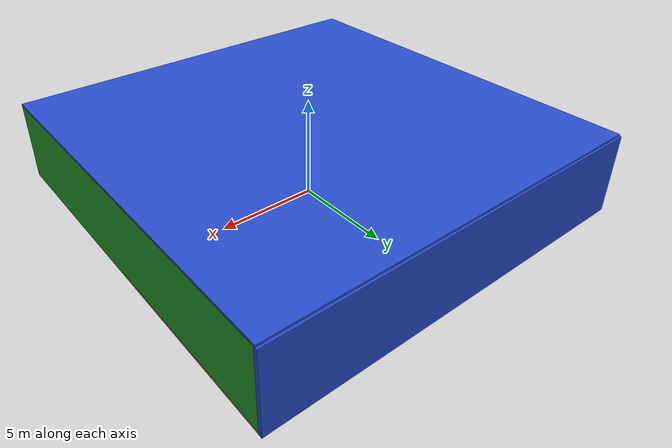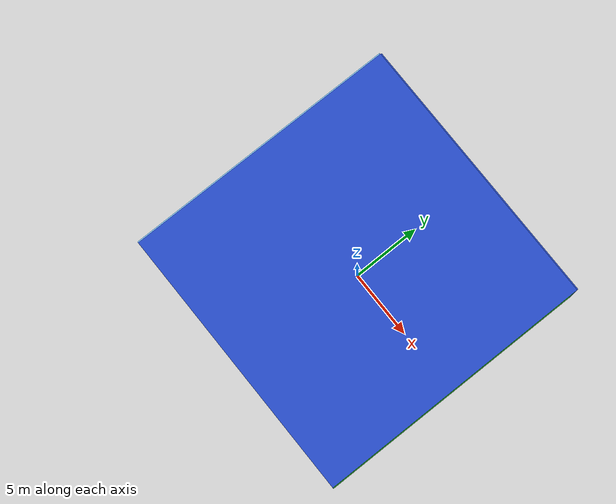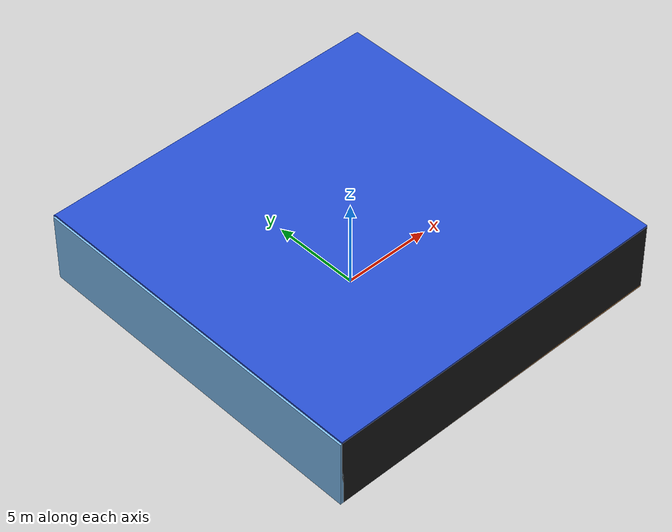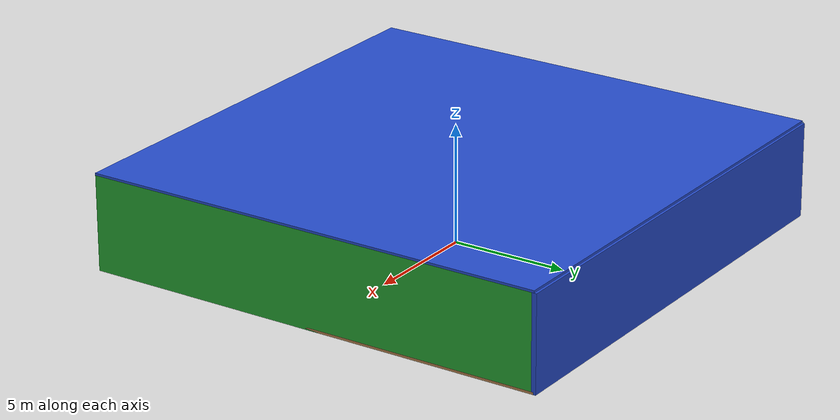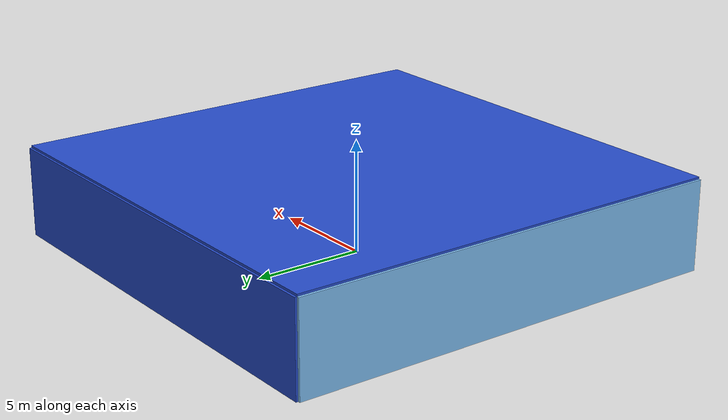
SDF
<sdf version="1.4">
 <world name="default">
  <physics type="ode">
   <max_step_size>0.001</max_step_size>
   <real_time_factor>1</real_time_factor>
   <real_time_update_rate>1000</real_time_update_rate>
   <gravity>0 0 -9.8</gravity>
  </physics>
  <scene><ambient>0.4 0.4 0.4 1</ambient><background>0.7 0.7 0.7 1</background><shadows>1</shadows></scene>
  <model name="Surrounding">
   <static>1</static>
   <link name="Ceiling">
    <collision name="Ceiling_Collision"><geometry><box><size>20 20 0.1</size></box></geometry></collision>
    <visual name="Ceiling_Visual">
     <geometry><box><size>20 20 0.1</size></box></geometry>
     <material>
      <script><uri>file://media/materials/scripts/gazebo.material</uri><name>Gazebo/BlueLaser</name></script>
     </material>
    </visual>
    <pose>0 0 4.05 0 0 0</pose>
   </link>
   <link name="Wall_South">
    <collision name="Wall_South_Collision">
     <geometry><box><size>20 0 4</size></box></geometry>
     <pose>0 0 2 0 -0 0</pose>
    </collision>
    <visual name="Wall_South_Visual">
     <pose>0 0 2 0 -0 0</pose>
     <geometry><box><size>20 0 4</size></box></geometry>
     <material>
      <script><uri>file://media/materials/scripts/gazebo.material</uri><name>Gazebo/Black</name></script>
     </material>
    </visual>
    <velocity_decay><linear>0</linear><angular>0</angular></velocity_decay>
    <pose>0 -10 0 0 -0 0</pose>
   </link>
   <link name="Wall_East">
    <collision name="Wall_21_Collision">
     <geometry><box><size>20 0 4</size></box></geometry>
     <pose>0 0 2 0 -0 0</pose>
    </collision>
    <visual name="Wall_21_Visual">
     <pose>0 0 2 0 -0 0</pose>
     <geometry><box><size>20 0 4</size></box></geometry>
     <material>
      <script><uri>file://media/materials/scripts/gazebo.material</uri><name>Gazebo/GreenGlow</name></script>
     </material>
    </visual>
    <velocity_decay><linear>0</linear><angular>0</angular></velocity_decay>
    <pose>10 0 0 0 -0 1.5708</pose>
   </link>
   <link name="Wall_North">
    <collision name="Wall_22_Collision">
     <geometry><box><size>20 0.2 4</size></box></geometry>
     <pose>0 0 2 0 -0 0</pose>
    </collision>
    <visual name="Wall_22_Visual">
     <pose>0 0 2 0 -0 0</pose>
     <geometry><box><size>20 0.2 4</size></box></geometry>
     <material>
      <script><uri>file://media/materials/scripts/gazebo.material</uri><name>Gazebo/BlueGlow</name></script>
     </material>
    </visual>
    <velocity_decay><linear>0</linear><angular>0</angular></velocity_decay>
    <pose>0 10 0 0 -0 0</pose>
   </link>
   <link name="Wall_West">
    <collision name="Wall_23_Collision">
     <geometry><box><size>20 0.2 4</size></box></geometry>
     <pose>0 0 2 0 -0 0</pose>
    </collision>
    <visual name="Wall_23_Visual">
     <pose>0 0 2 0 -0 0</pose>
     <geometry><box><size>20 0.2 4</size></box></geometry>
     <material>
      <script><uri>file://media/materials/scripts/gazebo.material</uri><name>Gazebo/SkyBlue</name></script>
     </material>
    </visual>
    <velocity_decay><linear>0</linear><angular>0</angular></velocity_decay>
    <pose>-10 0 0 0 0 -1.5708</pose>
   </link>
   <link name="Ground_link">
    <collision name="collision">
     <pose>0 0 .05 0 -0 0</pose>
     <geometry><box><size>20 20 0.1</size></box></geometry>
    </collision>
    <visual name="visual">
     <pose>0 0 .05 0 -0 0</pose>
     <geometry><box><size>20 20 0.1</size></box></geometry>
     <material>
      <script><uri>file://media/materials/scripts/gazebo.material</uri><name>Gazebo/WoodPallet</name></script>
     </material>
    </visual>
   </link>
   <static>1</static>
  </model>
  <spherical_coordinates>
   <surface_model>EARTH_WGS84</surface_model>
   <latitude_deg>0</latitude_deg>
   <longitude_deg>0</longitude_deg>
   <elevation>0</elevation>
   <heading_deg>0</heading_deg>
  </spherical_coordinates>
  <light name="lightball_0" type="diffuse">
   <diffuse>0.8 0.8 0.8 1</diffuse>
   <specular>0.2 0.2 0.2 1</specular>
   <attenuation>
    <range>100</range>
    <constant>0.7</constant>
    <linear>0.01</linear>
    <quadratic>0.001</quadratic>
   </attenuation>
   <direction>-0.5 0.1 -0.9</direction>
   <pose>-7.53371896028 -0.825714855166 2.63722616662 0 0 0</pose>
  </light>
  <light name="lightball_1" type="diffuse">
   <diffuse>0.8 0.8 0.8 1</diffuse>
   <specular>0.2 0.2 0.2 1</specular>
   <attenuation>
    <range>100</range>
    <constant>0.7</constant>
    <linear>0.01</linear>
    <quadratic>0.001</quadratic>
   </attenuation>
   <direction>-0.5 0.1 -0.9</direction>
   <pose>-9.72539164253 -2.41153872855 0.517479451611 0 0 0</pose>
  </light>
  <light name="lightball_2" type="diffuse">
   <diffuse>0.8 0.8 0.8 1</diffuse>
   <specular>0.2 0.2 0.2 1</specular>
   <attenuation>
    <range>100</range>
    <constant>0.7</constant>
    <linear>0.01</linear>
    <quadratic>0.001</quadratic>
   </attenuation>
   <direction>-0.5 0.1 -0.9</direction>
   <pose>8.84947414838 6.05937618588 2.79434761735 0 0 0</pose>
  </light>
  <light name="lightball_3" type="diffuse">
   <diffuse>0.8 0.8 0.8 1</diffuse>
   <specular>0.2 0.2 0.2 1</specular>
   <attenuation>
    <range>100</range>
    <constant>0.7</constant>
    <linear>0.01</linear>
    <quadratic>0.001</quadratic>
   </attenuation>
   <direction>-0.5 0.1 -0.9</direction>
   <pose>-2.23864931881 1.97973812114 0.704012273503 0 0 0</pose>
  </light>
  <light name="lightball_4" type="diffuse">
   <diffuse>0.8 0.8 0.8 1</diffuse>
   <specular>0.2 0.2 0.2 1</specular>
   <attenuation>
    <range>100</range>
    <constant>0.7</constant>
    <linear>0.01</linear>
    <quadratic>0.001</quadratic>
   </attenuation>
   <direction>-0.5 0.1 -0.9</direction>
   <pose>6.22449773671 8.53588601025 3.88088036145 0 0 0</pose>
  </light>
  <include>
   <uri>model://textured_shapes</uri>
   <pose>-7.29314497688 -4.48027901602 0 0 0 1.20698459709</pose>
  </include>
  <include>
   <uri>model://robocup_3Dsim_goal</uri>
   <pose>-5.19431055434 0.753531270936 0 0 0 0.147238713079</pose>
  </include>
  <include>
   <uri>model://construction_cone</uri>
   <pose>-4.20336304363 8.04596328002 0 0 0 0.828033028002</pose>
  </include>
  <include>
   <uri>model://robocup_3Dsim_goal</uri>
   <pose>7.91412923031 4.30904286903 0 0 0 2.71968869684</pose>
  </include>
 </world>
</sdf>

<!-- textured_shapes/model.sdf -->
<sdf version="1.6">
  <model name="textured_shapes">
    <pose>0 0 0.5 0 0 0</pose>
    <link name="box">
      <pose>0 -1.5 0 0 0 0</pose>
      <collision name="collision">
        <geometry>
          <box>
            <size>1 1 1</size>
          </box>
        </geometry>
      </collision>
      <visual name="visual">
        <geometry>
          <box>
            <size>1 1 1</size>
          </box>
        </geometry>
        <material>
          <script>
            <uri>model://../model_source/models/textured_shapes/materials/scripts</uri>
            <uri>model://../model_source/models/textured_shapes/materials/textures</uri>
            <name>TexturedShape/Squares</name>
          </script>
        </material>
      </visual>
    </link>
    <link name="sphere">
      <collision name="collision">
        <geometry>
          <sphere>
            <radius>0.5</radius>
          </sphere>
        </geometry>
      </collision>
      <visual name="visual">
        <geometry>
          <sphere>
            <radius>0.5</radius>
          </sphere>
        </geometry>
        <material>
          <script>
            <uri>model://../model_source/models/textured_shapes/materials/scripts</uri>
            <uri>model://../model_source/models/textured_shapes/materials/textures</uri>
            <name>TexturedShape/Squares</name>
          </script>
        </material>
      </visual>
    </link>
    <link name="cylinder">
      <pose>0 1.5 0 0 0 0</pose>
      <collision name="collision">
        <geometry>
          <cylinder>
            <radius>0.5</radius>
            <length>1</length>
          </cylinder>
        </geometry>
      </collision>
      <visual name="visual">
        <geometry>
          <cylinder>
            <radius>0.5</radius>
            <length>1</length>
          </cylinder>
        </geometry>
        <material>
          <script>
            <uri>model://../model_source/models/textured_shapes/materials/scripts</uri>
            <uri>model://../model_source/models/textured_shapes/materials/textures</uri>
            <name>TexturedShape/Squares</name>
          </script>
        </material>
      </visual>
    </link>
  </model>
</sdf>

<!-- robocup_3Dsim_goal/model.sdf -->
<sdf version="1.5">
  <model name="robocup_3d_goal">
    <static>true</static>
    <link name="left_post">
      <pose>0 1.05 0.45 0 0 0</pose>
      <collision name="collision">
        <geometry>
          <cylinder>
            <radius>0.05</radius>
            <length>0.9</length>
          </cylinder>
        </geometry>
      </collision>
      <visual name="visual">
        <geometry>
          <cylinder>
            <radius>0.05</radius>
            <length>0.9</length>
          </cylinder>
        </geometry>
        <material>
          <script>
            <uri>file://media/materials/scripts/gazebo.material</uri>
            <name>Gazebo/ZincYellow</name>
          </script>
        </material>
      </visual>
    </link>
    <link name="left_support_horiz_lower">
      <pose>0.30 1.05 0.01 0 0 0</pose>
      <collision name="collision">
        <geometry>
          <box>
            <size>0.50 0.02 0.02</size>
          </box>
        </geometry>
      </collision>
      <visual name="visual">
        <geometry>
          <box>
            <size>0.50 0.02 0.02</size>
          </box>
        </geometry>
        <material>
          <script>
            <uri>file://media/materials/scripts/gazebo.material</uri>
            <name>Gazebo/White</name>
          </script>
        </material>
      </visual>
    </link>
    <link name="left_support_horiz_upper">
      <pose>0.30 1.05 0.79 0 0 0</pose>
      <collision name="collision">
        <geometry>
          <box>
            <size>0.50 0.02 0.02</size>
          </box>
        </geometry>
      </collision>
      <visual name="visual">
        <geometry>
          <box>
            <size>0.50 0.02 0.02</size>
          </box>
        </geometry>
        <material>
          <script>
            <uri>file://media/materials/scripts/gazebo.material</uri>
            <name>Gazebo/White</name>
          </script>
        </material>
      </visual>
    </link>
    <link name="left_support_vertical">
      <pose>0.56 1.05 0.4 0 1.5708 0</pose>
      <collision name="collision">
        <geometry>
          <box>
            <size>0.80 0.02 0.02</size>
          </box>
        </geometry>
      </collision>
      <visual name="visual">
        <geometry>
          <box>
            <size>0.80 0.02 0.02</size>
          </box>
        </geometry>
        <material>
          <script>
            <uri>file://media/materials/scripts/gazebo.material</uri>
            <name>Gazebo/White</name>
          </script>
        </material>
      </visual>
    </link>
    <link name="right_support_horiz_lower">
      <pose>0.30 -1.05 0.01 0 0 0</pose>
      <collision name="collision">
        <geometry>
          <box>
            <size>0.50 0.02 0.02</size>
          </box>
        </geometry>
      </collision>
      <visual name="visual">
        <geometry>
          <box>
            <size>0.50 0.02 0.02</size>
          </box>
        </geometry>
        <material>
          <script>
            <uri>file://media/materials/scripts/gazebo.material</uri>
            <name>Gazebo/White</name>
          </script>
        </material>
      </visual>
    </link>
    <link name="right_support_horiz_upper">
      <pose>0.30 -1.05 0.79 0 0 0</pose>
      <collision name="collision">
        <geometry>
          <box>
            <size>0.50 0.02 0.02</size>
          </box>
        </geometry>
      </collision>
      <visual name="visual">
        <geometry>
          <box>
            <size>0.50 0.02 0.02</size>
          </box>
        </geometry>
        <material>
          <script>
            <uri>file://media/materials/scripts/gazebo.material</uri>
            <name>Gazebo/White</name>
          </script>
        </material>
      </visual>
    </link>
    <link name="right_support_vertical">
      <pose>0.56 -1.05 0.4 0 1.5708 0</pose>
      <collision name="collision">
        <geometry>
          <box>
            <size>0.80 0.02 0.02</size>
          </box>
        </geometry>
      </collision>
      <visual name="visual">
        <geometry>
          <box>
            <size>0.80 0.02 0.02</size>
          </box>
        </geometry>
        <material>
          <script>
            <uri>file://media/materials/scripts/gazebo.material</uri>
            <name>Gazebo/White</name>
          </script>
        </material>
      </visual>
    </link>
    <link name="center_support_horiz_lower">
      <pose>0.56 0 0.01 0 1.5708 0</pose>
      <collision name="collision">
        <geometry>
          <box>
            <size>0.02 2.08 0.02</size>
          </box>
        </geometry>
      </collision>
      <visual name="visual">
        <geometry>
          <box>
            <size>0.02 2.08 0.02</size>
          </box>
        </geometry>
        <material>
          <script>
            <uri>file://media/materials/scripts/gazebo.material</uri>
            <name>Gazebo/White</name>
          </script>
        </material>
      </visual>
    </link>
    <link name="center_support_horiz_upper">
      <pose>0.56 0 0.79 0 1.5708 0</pose>
      <collision name="collision">
        <geometry>
          <box>
            <size>0.02 2.08 0.02</size>
          </box>
        </geometry>
      </collision>
      <visual name="visual">
        <geometry>
          <box>
            <size>0.02 2.08 0.02</size>
          </box>
        </geometry>
        <material>
          <script>
            <uri>file://media/materials/scripts/gazebo.material</uri>
            <name>Gazebo/White</name>
          </script>
        </material>
      </visual>
    </link>
    <link name="right_post">
      <pose>0 -1.05 0.45 0 0 0</pose>
      <collision name="collision">
        <geometry>
          <cylinder>
            <radius>0.05</radius>
            <length>0.9</length>
          </cylinder>
        </geometry>
      </collision>
      <visual name="visual">
        <geometry>
          <cylinder>
            <radius>0.05</radius>
            <length>0.9</length>
          </cylinder>
        </geometry>
        <material>
          <script>
            <uri>file://media/materials/scripts/gazebo.material</uri>
            <name>Gazebo/ZincYellow</name>
          </script>
        </material>
      </visual>
    </link>
    <link name="crossbar">
      <pose>0 0 0.85 1.57 1.57 0</pose>
      <collision name="collision">
        <geometry>
          <cylinder>
            <radius>0.05</radius>
            <length>2.0</length>
          </cylinder>
        </geometry>
      </collision>
      <visual name="visual">
        <geometry>
          <cylinder>
            <radius>0.05</radius>
            <length>2.0</length>
          </cylinder>
        </geometry>
        <material>
          <script>
            <uri>file://media/materials/scripts/gazebo.material</uri>
            <name>Gazebo/ZincYellow</name>
          </script>
        </material>
      </visual>
    </link>
    <link name="center_net">
      <pose>0.56 0 0.40 0 0 0</pose>
      <collision name="collision">
        <geometry>
          <box>
            <size>0.01 2.1 0.80</size>
          </box>
        </geometry>
      </collision>
      <visual name="visual">
        <geometry>
          <box>
            <size>0.01 2.1 0.80</size>
          </box>
        </geometry>
        <material>
          <script>
            <uri>model://../model_source/models/robocup09_spl_field/materials/scripts/</uri>
            <uri>model://../model_source/models/robocup09_spl_field/materials/textures/</uri>
            <name>RoboCup/Net</name>
          </script>
        </material>
      </visual>
    </link>
    <link name="left_net">
      <pose>0.30 1.05 0.40 0 0 0</pose>
      <collision name="collision">
        <geometry>
          <box>
            <size>0.50 0.01 0.76</size>
          </box>
        </geometry>
      </collision>
      <visual name="visual">
        <geometry>
          <box>
            <size>0.50 0.01 0.76</size>
          </box>
        </geometry>
        <material>
          <script>
            <uri>model://../model_source/models/robocup09_spl_field/materials/scripts/</uri>
            <uri>model://../model_source/models/robocup09_spl_field/materials/textures/</uri>
            <name>RoboCup/Net</name>
          </script>
        </material>
      </visual>
    </link>
    <link name="right_net">
      <pose>0.30 -1.05 0.40 0 0 0</pose>
      <collision name="collision">
        <geometry>
          <box>
            <size>0.50 0.01 0.76</size>
          </box>
        </geometry>
      </collision>
      <visual name="visual">
        <geometry>
          <box>
            <size>0.50 0.01 0.76</size>
          </box>
        </geometry>
        <material>
          <script>
            <uri>model://../model_source/models/robocup09_spl_field/materials/scripts/</uri>
            <uri>model://../model_source/models/robocup09_spl_field/materials/textures/</uri>
            <name>RoboCup/Net</name>
          </script>
        </material>
      </visual>
    </link>
  </model>
</sdf>

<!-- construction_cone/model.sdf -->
<sdf version="1.5">
  <model name="Construction Cone">
    <link name="link">
      <collision name="collision">
        <geometry>
          <mesh>
            <scale>10 10 10</scale>
            <uri>file://isr-testbed/construction_cone/meshes/construction_cone.dae</uri>
          </mesh>
        </geometry>
      </collision>
      <visual name="visual">
        <geometry>
          <mesh>
            <scale>10 10 10</scale>
            <uri>file://isr-testbed/construction_cone/meshes/construction_cone.dae</uri>
          </mesh>
        </geometry>
      </visual>
    </link>
  </model>
</sdf>
